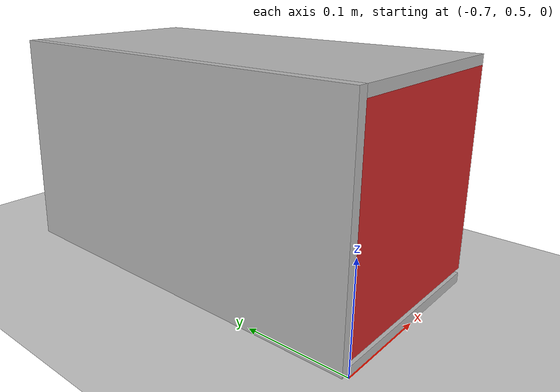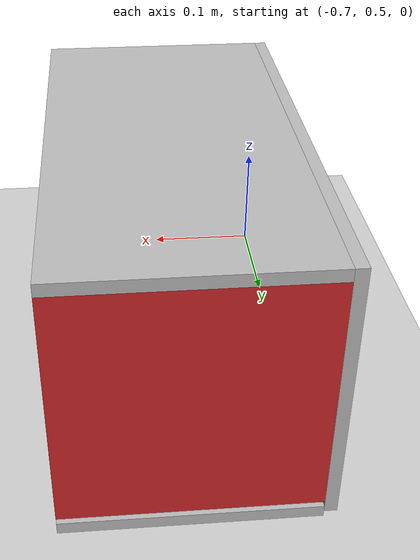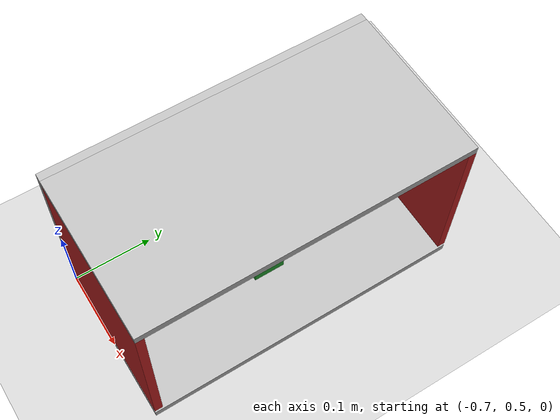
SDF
<?xml version="1.0" ?>
<sdf version="1.5">
  <world name="default">
    <plugin name="ros_link_attacher_plugin" filename="libgazebo_ros_link_attacher.so"/>
    <include>
      <uri>model://sun</uri>
    </include>

    <include>
      <uri>model://ground_plane</uri>
    </include>

	<physics type='ode'>
	  <max_step_size>0.001</max_step_size>
	  <real_time_factor>1</real_time_factor>
	  <real_time_update_rate>1000</real_time_update_rate>
	  <gravity>0 0 -9.81</gravity>
	</physics>

    <model name="thebox">
      <pose>-0.6 0.7 0.005 0 0 0</pose>
      <link name="link">
	<inertial>
          <mass>800</mass>
        </inertial>
        <collision name="floor_collision">
          <geometry>
            <box>
              <size>0.2 0.4 0.01</size>
            </box>
          </geometry>
        </collision>
        <visual name="floor_visual">
          <geometry>
            <box>
              <size>0.2 0.4 0.01</size>
            </box>
          </geometry>
        </visual>

	<collision name="floor2_collision">
	  <pose>0 0 0.215 0 0 0</pose>
          <geometry>
            <box>
              <size>0.2 0.4 0.01</size>
            </box>
          </geometry>
        </collision>
        <visual name="floor2_visual">
	  <pose>0 0 0.215 0 0 0</pose>
          <geometry>
            <box>
              <size>0.2 0.4 0.01</size>
            </box>
          </geometry>
        </visual>

        <!-- wall1_collision is the wall to the right of the door, when
             facing the door -->
        <collision name="wall1_collision">
          <pose>0 0.195 0.11 0 0 0</pose>
          <geometry>
            <box>
              <size>0.2 0.01 0.2</size>
            </box>
          </geometry>
        </collision>
        <visual name="wall1_visual">
          <pose>0 0.195 0.11 0 0 0</pose>
          <geometry>
            <box>
              <size>0.2 0.01 0.2</size>
            </box>
          </geometry>
          <material>
            <script>
              <name>Gazebo/Red</name>
            </script>
          </material>
        </visual>

        <!-- wall2_collision is the wall to the left of the door, when
             facing the door -->
        <collision name="wall2_collision">
          <pose>0 -0.195 0.11 0 0 0</pose>
          <geometry>
            <box>
              <size>0.2 0.01 0.2</size>
            </box>
          </geometry>
        </collision>
        <visual name="wall2_visual">
          <pose>0 -0.195 0.11 0 0 0</pose>
          <geometry>
            <box>
              <size>0.2 0.01 0.2</size>
            </box>
          </geometry>
          <material>
            <script>
              <name>Gazebo/Red</name>
            </script>
          </material>
        </visual>

	<collision name="collision_door">
	  <pose>-0.105 0 0.11 0 0 0</pose>
          <geometry>
            <box>
              <size>0.01 0.4 0.22</size>
            </box>
          </geometry>
        </collision>
        <visual name="visual_door">
	  <pose>-0.105 0 0.11 0 0 0</pose>
          <geometry>
            <box>
              <size>0.01 0.4 0.22</size>
            </box>
          </geometry>
        </visual>
      </link>

    </model>

	<model name='coke_can_box_model'>
	  <pose frame=''>-0.6 0.7 0.11 0 0 0</pose>
	  <link name='coke_can'>
	    <inertial>
	      <mass>0.01</mass>
	      <inertia>
		<ixx>0.00016</ixx>
		<ixy>0</ixy>
		<ixz>0</ixz>
		<iyy>0.00016</iyy>
		<iyz>0</iyz>
		<izz>0.00006</izz>
	      </inertia>
	    </inertial>
	    <collision name='collision'>

		<geometry>
		    <box>
		        <size>0.04 0.04 0.2</size>
		    </box>
		</geometry>
	      <max_contacts>10</max_contacts>
	      <surface>
		       <friction>
		         <ode>
		           <mu>100.0</mu>
		           <mu2>100.0</mu2>
		         </ode>
		       </friction>
		       <bounce>
	     		 <restitution_coefficient>0.5</restitution_coefficient>
	     		 <threshold>0.01</threshold>
	    	       </bounce>
		       <contact>
		         <ode>
		           <kp>10000000.0</kp>
		           <kd>1.0</kd>
			   <soft_cfm>0.8</soft_cfm>
			   <soft_erp>0.8</soft_erp>
		           <min_depth>0.001</min_depth>
		           <max_vel>0.1</max_vel>
		         </ode>
		       </contact>
	       </surface>
	    </collision>
	    <visual name='visual'>
		<geometry>
		    <box>
		        <size>0.04 0.04 0.2</size>
		    </box>
		</geometry>
	      <material>
		<script>
		  <name>Gazebo/Green</name>
		  <uri>file://media/materials/scripts/gazebo.material</uri>
		</script>
	      </material>
	    </visual>
	    <self_collide>0</self_collide>
	    <kinematic>0</kinematic>
	  </link>
	</model>
</world>
</sdf>
